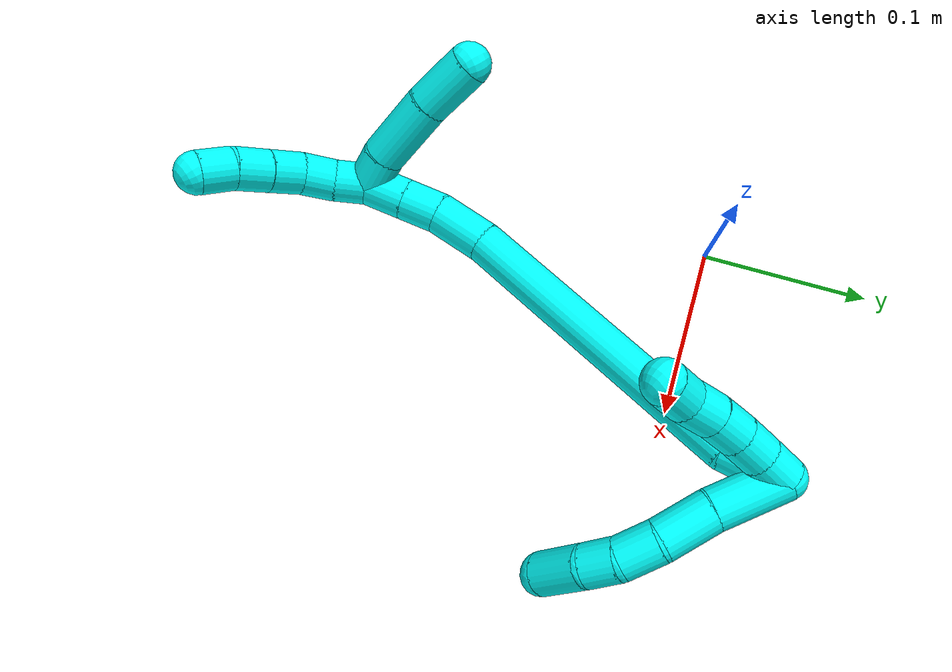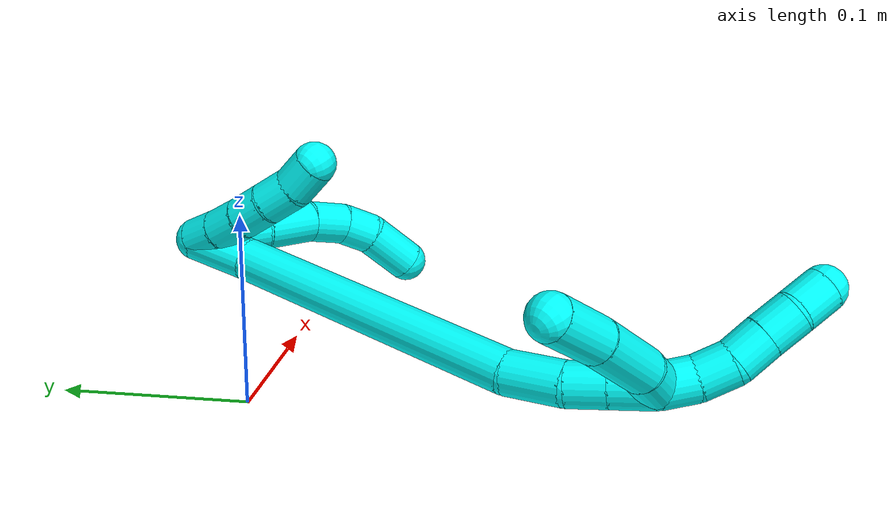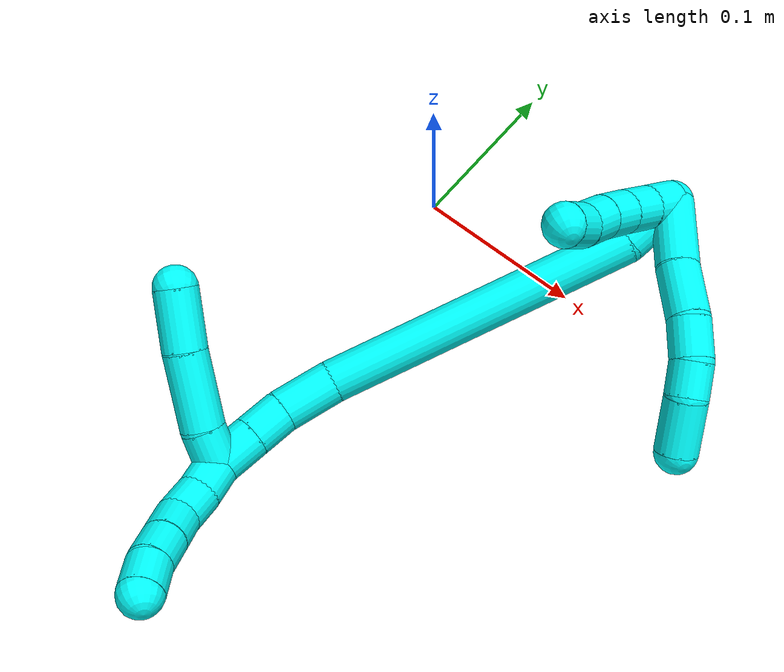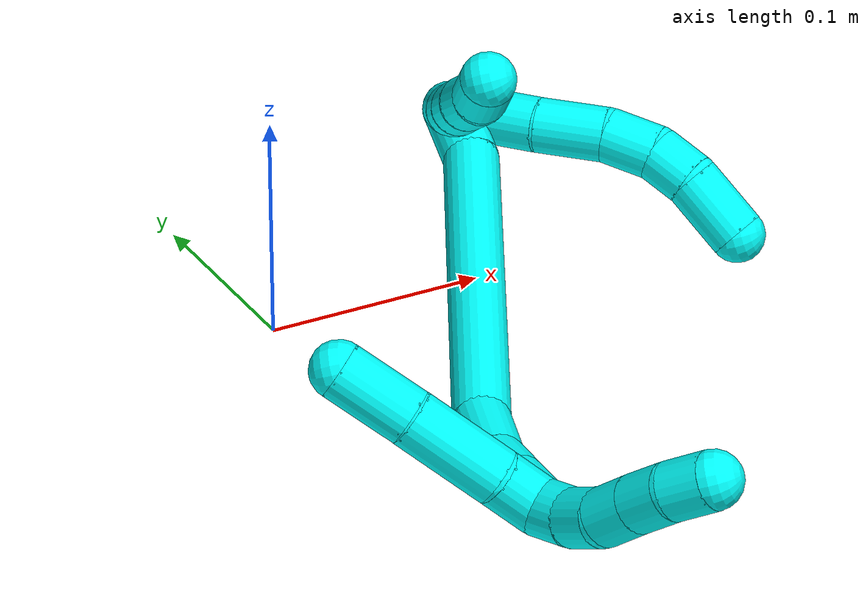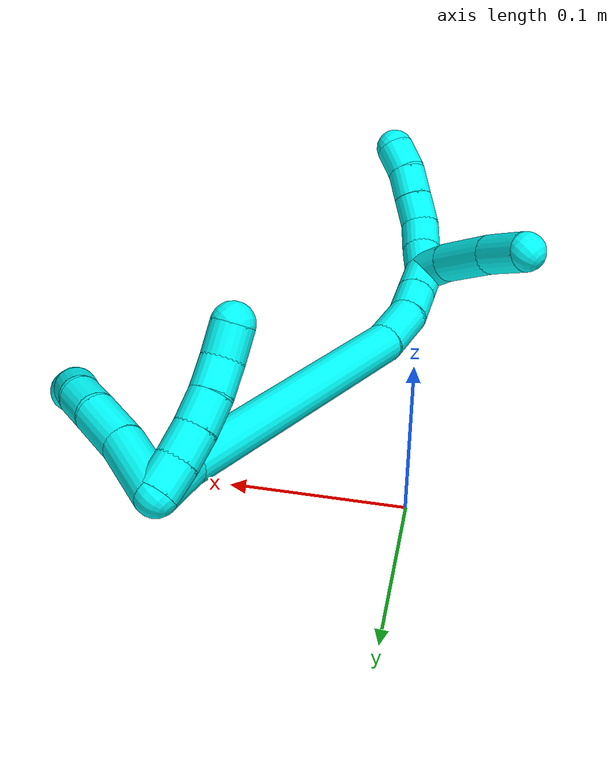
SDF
<sdf version="1.7">
 <world name="default">
  <model name="3">
   <static>0</static>
   <link name="3">
    <collision name="collision-cylinder-e_1_2_8">
     <pose>-0.001048 -0.008668 0.019659 0.415281 -0.048739 -0.01027</pose>
     <geometry><cylinder><radius>0.0125</radius><length>0.04302</length></cylinder></geometry>
     <surface>
      <friction><ode><mu>1.16</mu><mu2>1.16</mu2><slip1>0</slip1><slip2>0</slip2></ode></friction>
      <contact><ode><kp>1e+06</kp><kd>1</kd><max_vel>0</max_vel><min_depth>0.001</min_depth></ode></contact>
     </surface>
    </collision>
    <visual name="visual-cylinder-e_1_2_8">
     <pose>-0.001048 -0.008668 0.019659 0.415281 -0.048739 -0.01027</pose>
     <geometry><cylinder><radius>0.0125</radius><length>0.04302</length></cylinder></geometry>
     <material><ambient>0.003922 1 0.996078 1</ambient></material>
    </visual>
    <collision name="collision-cylinder-e_2_8_9">
     <pose>-0.001193 -0.023029 0.054084 0.367985 0.056977 0.010606</pose>
     <geometry><cylinder><radius>0.0125</radius><length>0.031704</length></cylinder></geometry>
     <surface>
      <friction><ode><mu>1.16</mu><mu2>1.16</mu2><slip1>0</slip1><slip2>0</slip2></ode></friction>
      <contact><ode><kp>1e+06</kp><kd>1</kd><max_vel>0</max_vel><min_depth>0.001</min_depth></ode></contact>
     </surface>
    </collision>
    <visual name="visual-cylinder-e_2_8_9">
     <pose>-0.001193 -0.023029 0.054084 0.367985 0.056977 0.010606</pose>
     <geometry><cylinder><radius>0.0125</radius><length>0.031704</length></cylinder></geometry>
     <material><ambient>0.003922 1 0.996078 1</ambient></material>
    </visual>
    <collision name="collision-cylinder-e_3_9_10">
     <pose>0.00085 -0.03506 0.07867 0.57318 0.097294 0.028693</pose>
     <geometry><cylinder><radius>0.0125</radius><length>0.023484</length></cylinder></geometry>
     <surface>
      <friction><ode><mu>1.16</mu><mu2>1.16</mu2><slip1>0</slip1><slip2>0</slip2></ode></friction>
      <contact><ode><kp>1e+06</kp><kd>1</kd><max_vel>0</max_vel><min_depth>0.001</min_depth></ode></contact>
     </surface>
    </collision>
    <visual name="visual-cylinder-e_3_9_10">
     <pose>0.00085 -0.03506 0.07867 0.57318 0.097294 0.028693</pose>
     <geometry><cylinder><radius>0.0125</radius><length>0.023484</length></cylinder></geometry>
     <material><ambient>0.003922 1 0.996078 1</ambient></material>
    </visual>
    <collision name="collision-cylinder-e_4_10_11">
     <pose>0.002723 -0.049112 0.095037 0.866944 0.072217 0.033435</pose>
     <geometry><cylinder><radius>0.0125</radius><length>0.02029</length></cylinder></geometry>
     <surface>
      <friction><ode><mu>1.16</mu><mu2>1.16</mu2><slip1>0</slip1><slip2>0</slip2></ode></friction>
      <contact><ode><kp>1e+06</kp><kd>1</kd><max_vel>0</max_vel><min_depth>0.001</min_depth></ode></contact>
     </surface>
    </collision>
    <visual name="visual-cylinder-e_4_10_11">
     <pose>0.002723 -0.049112 0.095037 0.866944 0.072217 0.033435</pose>
     <geometry><cylinder><radius>0.0125</radius><length>0.02029</length></cylinder></geometry>
     <material><ambient>0.003922 1 0.996078 1</ambient></material>
    </visual>
    <collision name="collision-cylinder-e_5_11_6">
     <pose>0.007105 -0.070435 0.108623 1.09355 0.233864 0.142756</pose>
     <geometry><cylinder><radius>0.0125</radius><length>0.031501</length></cylinder></geometry>
     <surface>
      <friction><ode><mu>1.16</mu><mu2>1.16</mu2><slip1>0</slip1><slip2>0</slip2></ode></friction>
      <contact><ode><kp>1e+06</kp><kd>1</kd><max_vel>0</max_vel><min_depth>0.001</min_depth></ode></contact>
     </surface>
    </collision>
    <visual name="visual-cylinder-e_5_11_6">
     <pose>0.007105 -0.070435 0.108623 1.09355 0.233864 0.142756</pose>
     <geometry><cylinder><radius>0.0125</radius><length>0.031501</length></cylinder></geometry>
     <material><ambient>0.003922 1 0.996078 1</ambient></material>
    </visual>
    <collision name="collision-cylinder-e_1_2_12">
     <pose>-0.009151 -0.002582 0.003096 0.695146 -1.15586 -0.464059</pose>
     <geometry><cylinder><radius>0.0125</radius><length>0.02</length></cylinder></geometry>
     <surface>
      <friction><ode><mu>1.16</mu><mu2>1.16</mu2><slip1>0</slip1><slip2>0</slip2></ode></friction>
      <contact><ode><kp>1e+06</kp><kd>1</kd><max_vel>0</max_vel><min_depth>0.001</min_depth></ode></contact>
     </surface>
    </collision>
    <visual name="visual-cylinder-e_1_2_12">
     <pose>-0.009151 -0.002582 0.003096 0.695146 -1.15586 -0.464059</pose>
     <geometry><cylinder><radius>0.0125</radius><length>0.02</length></cylinder></geometry>
     <material><ambient>0.003922 1 0.996078 1</ambient></material>
    </visual>
    <collision name="collision-cylinder-e_2_12_13">
     <pose>-0.027459 -0.007061 0.009738 0.491334 -1.15691 -0.324559</pose>
     <geometry><cylinder><radius>0.0125</radius><length>0.02</length></cylinder></geometry>
     <surface>
      <friction><ode><mu>1.16</mu><mu2>1.16</mu2><slip1>0</slip1><slip2>0</slip2></ode></friction>
      <contact><ode><kp>1e+06</kp><kd>1</kd><max_vel>0</max_vel><min_depth>0.001</min_depth></ode></contact>
     </surface>
    </collision>
    <visual name="visual-cylinder-e_2_12_13">
     <pose>-0.027459 -0.007061 0.009738 0.491334 -1.15691 -0.324559</pose>
     <geometry><cylinder><radius>0.0125</radius><length>0.02</length></cylinder></geometry>
     <material><ambient>0.003922 1 0.996078 1</ambient></material>
    </visual>
    <collision name="collision-cylinder-e_3_13_14">
     <pose>-0.04557 -0.010419 0.017487 0.334228 -1.10967 -0.20834</pose>
     <geometry><cylinder><radius>0.0125</radius><length>0.02</length></cylinder></geometry>
     <surface>
      <friction><ode><mu>1.16</mu><mu2>1.16</mu2><slip1>0</slip1><slip2>0</slip2></ode></friction>
      <contact><ode><kp>1e+06</kp><kd>1</kd><max_vel>0</max_vel><min_depth>0.001</min_depth></ode></contact>
     </surface>
    </collision>
    <visual name="visual-cylinder-e_3_13_14">
     <pose>-0.04557 -0.010419 0.017487 0.334228 -1.10967 -0.20834</pose>
     <geometry><cylinder><radius>0.0125</radius><length>0.02</length></cylinder></geometry>
     <material><ambient>0.003922 1 0.996078 1</ambient></material>
    </visual>
    <collision name="collision-cylinder-e_4_14_15">
     <pose>-0.062954 -0.013272 0.026888 0.261998 -1.00258 -0.144146</pose>
     <geometry><cylinder><radius>0.0125</radius><length>0.02</length></cylinder></geometry>
     <surface>
      <friction><ode><mu>1.16</mu><mu2>1.16</mu2><slip1>0</slip1><slip2>0</slip2></ode></friction>
      <contact><ode><kp>1e+06</kp><kd>1</kd><max_vel>0</max_vel><min_depth>0.001</min_depth></ode></contact>
     </surface>
    </collision>
    <visual name="visual-cylinder-e_4_14_15">
     <pose>-0.062954 -0.013272 0.026888 0.261998 -1.00258 -0.144146</pose>
     <geometry><cylinder><radius>0.0125</radius><length>0.02</length></cylinder></geometry>
     <material><ambient>0.003922 1 0.996078 1</ambient></material>
    </visual>
    <collision name="collision-cylinder-e_5_15_5">
     <pose>-0.080145 -0.013453 0.036749 -0.254402 -1.06803 0.150963</pose>
     <geometry><cylinder><radius>0.0125</radius><length>0.02</length></cylinder></geometry>
     <surface>
      <friction><ode><mu>1.16</mu><mu2>1.16</mu2><slip1>0</slip1><slip2>0</slip2></ode></friction>
      <contact><ode><kp>1e+06</kp><kd>1</kd><max_vel>0</max_vel><min_depth>0.001</min_depth></ode></contact>
     </surface>
    </collision>
    <visual name="visual-cylinder-e_5_15_5">
     <pose>-0.080145 -0.013453 0.036749 -0.254402 -1.06803 0.150963</pose>
     <geometry><cylinder><radius>0.0125</radius><length>0.02</length></cylinder></geometry>
     <material><ambient>0.003922 1 0.996078 1</ambient></material>
    </visual>
    <collision name="collision-cylinder-e_1_2_16">
     <pose>-0.008757 -0.014402 0.004855 1.24565 -0.522707 -0.379561</pose>
     <geometry><cylinder><radius>0.0125</radius><length>0.035081</length></cylinder></geometry>
     <surface>
      <friction><ode><mu>1.16</mu><mu2>1.16</mu2><slip1>0</slip1><slip2>0</slip2></ode></friction>
      <contact><ode><kp>1e+06</kp><kd>1</kd><max_vel>0</max_vel><min_depth>0.001</min_depth></ode></contact>
     </surface>
    </collision>
    <visual name="visual-cylinder-e_1_2_16">
     <pose>-0.008757 -0.014402 0.004855 1.24565 -0.522707 -0.379561</pose>
     <geometry><cylinder><radius>0.0125</radius><length>0.035081</length></cylinder></geometry>
     <material><ambient>0.003922 1 0.996078 1</ambient></material>
    </visual>
    <collision name="collision-cylinder-e_2_16_17">
     <pose>-0.079715 -0.097113 0.017155 1.46224 -0.735698 -0.665627</pose>
     <geometry><cylinder><radius>0.0125</radius><length>0.185371</length></cylinder></geometry>
     <surface>
      <friction><ode><mu>1.16</mu><mu2>1.16</mu2><slip1>0</slip1><slip2>0</slip2></ode></friction>
      <contact><ode><kp>1e+06</kp><kd>1</kd><max_vel>0</max_vel><min_depth>0.001</min_depth></ode></contact>
     </surface>
    </collision>
    <visual name="visual-cylinder-e_2_16_17">
     <pose>-0.079715 -0.097113 0.017155 1.46224 -0.735698 -0.665627</pose>
     <geometry><cylinder><radius>0.0125</radius><length>0.185371</length></cylinder></geometry>
     <material><ambient>0.003922 1 0.996078 1</ambient></material>
    </visual>
    <collision name="collision-cylinder-e_3_17_18">
     <pose>-0.153567 -0.176287 0.0291 1.17807 -0.780717 -0.536602</pose>
     <geometry><cylinder><radius>0.0125</radius><length>0.033107</length></cylinder></geometry>
     <surface>
      <friction><ode><mu>1.16</mu><mu2>1.16</mu2><slip1>0</slip1><slip2>0</slip2></ode></friction>
      <contact><ode><kp>1e+06</kp><kd>1</kd><max_vel>0</max_vel><min_depth>0.001</min_depth></ode></contact>
     </surface>
    </collision>
    <visual name="visual-cylinder-e_3_17_18">
     <pose>-0.153567 -0.176287 0.0291 1.17807 -0.780717 -0.536602</pose>
     <geometry><cylinder><radius>0.0125</radius><length>0.033107</length></cylinder></geometry>
     <material><ambient>0.003922 1 0.996078 1</ambient></material>
    </visual>
    <collision name="collision-cylinder-e_4_18_19">
     <pose>-0.172572 -0.193651 0.038993 0.878263 -0.716479 -0.348161</pose>
     <geometry><cylinder><radius>0.0125</radius><length>0.022398</length></cylinder></geometry>
     <surface>
      <friction><ode><mu>1.16</mu><mu2>1.16</mu2><slip1>0</slip1><slip2>0</slip2></ode></friction>
      <contact><ode><kp>1e+06</kp><kd>1</kd><max_vel>0</max_vel><min_depth>0.001</min_depth></ode></contact>
     </surface>
    </collision>
    <visual name="visual-cylinder-e_4_18_19">
     <pose>-0.172572 -0.193651 0.038993 0.878263 -0.716479 -0.348161</pose>
     <geometry><cylinder><radius>0.0125</radius><length>0.022398</length></cylinder></geometry>
     <material><ambient>0.003922 1 0.996078 1</ambient></material>
    </visual>
    <collision name="collision-cylinder-e_5_19_1">
     <pose>-0.187823 -0.207128 0.050172 0.878348 -0.716592 -0.348258</pose>
     <geometry><cylinder><radius>0.0125</radius><length>0.024043</length></cylinder></geometry>
     <surface>
      <friction><ode><mu>1.16</mu><mu2>1.16</mu2><slip1>0</slip1><slip2>0</slip2></ode></friction>
      <contact><ode><kp>1e+06</kp><kd>1</kd><max_vel>0</max_vel><min_depth>0.001</min_depth></ode></contact>
     </surface>
    </collision>
    <visual name="visual-cylinder-e_5_19_1">
     <pose>-0.187823 -0.207128 0.050172 0.878348 -0.716592 -0.348258</pose>
     <geometry><cylinder><radius>0.0125</radius><length>0.024043</length></cylinder></geometry>
     <material><ambient>0.003922 1 0.996078 1</ambient></material>
    </visual>
    <collision name="collision-cylinder-e_1_1_20">
     <pose>-0.202397 -0.207339 0.050059 -2.2879 -0.639602 1.25874</pose>
     <geometry><cylinder><radius>0.0125</radius><length>0.022378</length></cylinder></geometry>
     <surface>
      <friction><ode><mu>1.16</mu><mu2>1.16</mu2><slip1>0</slip1><slip2>0</slip2></ode></friction>
      <contact><ode><kp>1e+06</kp><kd>1</kd><max_vel>0</max_vel><min_depth>0.001</min_depth></ode></contact>
     </surface>
    </collision>
    <visual name="visual-cylinder-e_1_1_20">
     <pose>-0.202397 -0.207339 0.050059 -2.2879 -0.639602 1.25874</pose>
     <geometry><cylinder><radius>0.0125</radius><length>0.022378</length></cylinder></geometry>
     <material><ambient>0.003922 1 0.996078 1</ambient></material>
    </visual>
    <collision name="collision-cylinder-e_2_20_21">
     <pose>-0.218736 -0.186356 0.031106 -2.31358 -0.464065 0.986772</pose>
     <geometry><cylinder><radius>0.0125</radius><length>0.043166</length></cylinder></geometry>
     <surface>
      <friction><ode><mu>1.16</mu><mu2>1.16</mu2><slip1>0</slip1><slip2>0</slip2></ode></friction>
      <contact><ode><kp>1e+06</kp><kd>1</kd><max_vel>0</max_vel><min_depth>0.001</min_depth></ode></contact>
     </surface>
    </collision>
    <visual name="visual-cylinder-e_2_20_21">
     <pose>-0.218736 -0.186356 0.031106 -2.31358 -0.464065 0.986772</pose>
     <geometry><cylinder><radius>0.0125</radius><length>0.043166</length></cylinder></geometry>
     <material><ambient>0.003922 1 0.996078 1</ambient></material>
    </visual>
    <collision name="collision-cylinder-e_3_21_4">
     <pose>-0.234698 -0.160566 0.006955 -2.3352 -0.374454 0.835907</pose>
     <geometry><cylinder><radius>0.0125</radius><length>0.034456</length></cylinder></geometry>
     <surface>
      <friction><ode><mu>1.16</mu><mu2>1.16</mu2><slip1>0</slip1><slip2>0</slip2></ode></friction>
      <contact><ode><kp>1e+06</kp><kd>1</kd><max_vel>0</max_vel><min_depth>0.001</min_depth></ode></contact>
     </surface>
    </collision>
    <visual name="visual-cylinder-e_3_21_4">
     <pose>-0.234698 -0.160566 0.006955 -2.3352 -0.374454 0.835907</pose>
     <geometry><cylinder><radius>0.0125</radius><length>0.034456</length></cylinder></geometry>
     <material><ambient>0.003922 1 0.996078 1</ambient></material>
    </visual>
    <collision name="collision-cylinder-e_1_1_22">
     <pose>-0.200657 -0.218516 0.063453 0.532069 -0.516521 -0.143716</pose>
     <geometry><cylinder><radius>0.0125</radius><length>0.02</length></cylinder></geometry>
     <surface>
      <friction><ode><mu>1.16</mu><mu2>1.16</mu2><slip1>0</slip1><slip2>0</slip2></ode></friction>
      <contact><ode><kp>1e+06</kp><kd>1</kd><max_vel>0</max_vel><min_depth>0.001</min_depth></ode></contact>
     </surface>
    </collision>
    <visual name="visual-cylinder-e_1_1_22">
     <pose>-0.200657 -0.218516 0.063453 0.532069 -0.516521 -0.143716</pose>
     <geometry><cylinder><radius>0.0125</radius><length>0.02</length></cylinder></geometry>
     <material><ambient>0.003922 1 0.996078 1</ambient></material>
    </visual>
    <collision name="collision-cylinder-e_2_22_23">
     <pose>-0.211781 -0.225127 0.07849 0.283731 -0.666861 -0.098858</pose>
     <geometry><cylinder><radius>0.0125</radius><length>0.02</length></cylinder></geometry>
     <surface>
      <friction><ode><mu>1.16</mu><mu2>1.16</mu2><slip1>0</slip1><slip2>0</slip2></ode></friction>
      <contact><ode><kp>1e+06</kp><kd>1</kd><max_vel>0</max_vel><min_depth>0.001</min_depth></ode></contact>
     </surface>
    </collision>
    <visual name="visual-cylinder-e_2_22_23">
     <pose>-0.211781 -0.225127 0.07849 0.283731 -0.666861 -0.098858</pose>
     <geometry><cylinder><radius>0.0125</radius><length>0.02</length></cylinder></geometry>
     <material><ambient>0.003922 1 0.996078 1</ambient></material>
    </visual>
    <collision name="collision-cylinder-e_3_23_24">
     <pose>-0.223135 -0.226836 0.094579 -0.057411 -0.543246 0.015993</pose>
     <geometry><cylinder><radius>0.0125</radius><length>0.02</length></cylinder></geometry>
     <surface>
      <friction><ode><mu>1.16</mu><mu2>1.16</mu2><slip1>0</slip1><slip2>0</slip2></ode></friction>
      <contact><ode><kp>1e+06</kp><kd>1</kd><max_vel>0</max_vel><min_depth>0.001</min_depth></ode></contact>
     </surface>
    </collision>
    <visual name="visual-cylinder-e_3_23_24">
     <pose>-0.223135 -0.226836 0.094579 -0.057411 -0.543246 0.015993</pose>
     <geometry><cylinder><radius>0.0125</radius><length>0.02</length></cylinder></geometry>
     <material><ambient>0.003922 1 0.996078 1</ambient></material>
    </visual>
    <collision name="collision-cylinder-e_4_24_25">
     <pose>-0.233508 -0.226192 0.111663 -0.017929 -0.547319 0.005033</pose>
     <geometry><cylinder><radius>0.0125</radius><length>0.02</length></cylinder></geometry>
     <surface>
      <friction><ode><mu>1.16</mu><mu2>1.16</mu2><slip1>0</slip1><slip2>0</slip2></ode></friction>
      <contact><ode><kp>1e+06</kp><kd>1</kd><max_vel>0</max_vel><min_depth>0.001</min_depth></ode></contact>
     </surface>
    </collision>
    <visual name="visual-cylinder-e_4_24_25">
     <pose>-0.233508 -0.226192 0.111663 -0.017929 -0.547319 0.005033</pose>
     <geometry><cylinder><radius>0.0125</radius><length>0.02</length></cylinder></geometry>
     <material><ambient>0.003922 1 0.996078 1</ambient></material>
    </visual>
    <collision name="collision-cylinder-e_5_25_3">
     <pose>-0.24212 -0.226176 0.129602 0.01465 -0.347703 -0.002573</pose>
     <geometry><cylinder><radius>0.0125</radius><length>0.02</length></cylinder></geometry>
     <surface>
      <friction><ode><mu>1.16</mu><mu2>1.16</mu2><slip1>0</slip1><slip2>0</slip2></ode></friction>
      <contact><ode><kp>1e+06</kp><kd>1</kd><max_vel>0</max_vel><min_depth>0.001</min_depth></ode></contact>
     </surface>
    </collision>
    <visual name="visual-cylinder-e_5_25_3">
     <pose>-0.24212 -0.226176 0.129602 0.01465 -0.347703 -0.002573</pose>
     <geometry><cylinder><radius>0.0125</radius><length>0.02</length></cylinder></geometry>
     <material><ambient>0.003922 1 0.996078 1</ambient></material>
    </visual>
    <collision name="collision-sphere-3">
     <pose>-0.245527 -0.226314 0.139002 0 -0 0</pose>
     <geometry><sphere><radius>0.0125</radius></sphere></geometry>
     <surface>
      <friction><ode><mu>1.16</mu><mu2>1.16</mu2><slip1>0</slip1><slip2>0</slip2></ode></friction>
      <contact><ode><kp>1e+06</kp><kd>1</kd><max_vel>0</max_vel><min_depth>0.001</min_depth></ode></contact>
     </surface>
    </collision>
    <visual name="visual-sphere-3">
     <pose>-0.245527 -0.226314 0.139002 0 -0 0</pose>
     <geometry><sphere><radius>0.0125</radius></sphere></geometry>
     <material><ambient>0.003922 1 0.996078 1</ambient></material>
    </visual>
    <collision name="collision-sphere-25">
     <pose>-0.238712 -0.226038 0.120201 0 -0 0</pose>
     <geometry><sphere><radius>0.0125</radius></sphere></geometry>
     <surface>
      <friction><ode><mu>1.16</mu><mu2>1.16</mu2><slip1>0</slip1><slip2>0</slip2></ode></friction>
      <contact><ode><kp>1e+06</kp><kd>1</kd><max_vel>0</max_vel><min_depth>0.001</min_depth></ode></contact>
     </surface>
    </collision>
    <visual name="visual-sphere-25">
     <pose>-0.238712 -0.226038 0.120201 0 -0 0</pose>
     <geometry><sphere><radius>0.0125</radius></sphere></geometry>
     <material><ambient>0.003922 1 0.996078 1</ambient></material>
    </visual>
    <collision name="collision-sphere-24">
     <pose>-0.228304 -0.226345 0.103126 0 -0 0</pose>
     <geometry><sphere><radius>0.0125</radius></sphere></geometry>
     <surface>
      <friction><ode><mu>1.16</mu><mu2>1.16</mu2><slip1>0</slip1><slip2>0</slip2></ode></friction>
      <contact><ode><kp>1e+06</kp><kd>1</kd><max_vel>0</max_vel><min_depth>0.001</min_depth></ode></contact>
     </surface>
    </collision>
    <visual name="visual-sphere-24">
     <pose>-0.228304 -0.226345 0.103126 0 -0 0</pose>
     <geometry><sphere><radius>0.0125</radius></sphere></geometry>
     <material><ambient>0.003922 1 0.996078 1</ambient></material>
    </visual>
    <collision name="collision-sphere-23">
     <pose>-0.217966 -0.227327 0.086033 0 -0 0</pose>
     <geometry><sphere><radius>0.0125</radius></sphere></geometry>
     <surface>
      <friction><ode><mu>1.16</mu><mu2>1.16</mu2><slip1>0</slip1><slip2>0</slip2></ode></friction>
      <contact><ode><kp>1e+06</kp><kd>1</kd><max_vel>0</max_vel><min_depth>0.001</min_depth></ode></contact>
     </surface>
    </collision>
    <visual name="visual-sphere-23">
     <pose>-0.217966 -0.227327 0.086033 0 -0 0</pose>
     <geometry><sphere><radius>0.0125</radius></sphere></geometry>
     <material><ambient>0.003922 1 0.996078 1</ambient></material>
    </visual>
    <collision name="collision-sphere-22">
     <pose>-0.205596 -0.222928 0.070946 0 -0 0</pose>
     <geometry><sphere><radius>0.0125</radius></sphere></geometry>
     <surface>
      <friction><ode><mu>1.16</mu><mu2>1.16</mu2><slip1>0</slip1><slip2>0</slip2></ode></friction>
      <contact><ode><kp>1e+06</kp><kd>1</kd><max_vel>0</max_vel><min_depth>0.001</min_depth></ode></contact>
     </surface>
    </collision>
    <visual name="visual-sphere-22">
     <pose>-0.205596 -0.222928 0.070946 0 -0 0</pose>
     <geometry><sphere><radius>0.0125</radius></sphere></geometry>
     <material><ambient>0.003922 1 0.996078 1</ambient></material>
    </visual>
    <collision name="collision-sphere-4">
     <pose>-0.240999 -0.148993 -0.004142 0 -0 0</pose>
     <geometry><sphere><radius>0.0125</radius></sphere></geometry>
     <surface>
      <friction><ode><mu>1.16</mu><mu2>1.16</mu2><slip1>0</slip1><slip2>0</slip2></ode></friction>
      <contact><ode><kp>1e+06</kp><kd>1</kd><max_vel>0</max_vel><min_depth>0.001</min_depth></ode></contact>
     </surface>
    </collision>
    <visual name="visual-sphere-4">
     <pose>-0.240999 -0.148993 -0.004142 0 -0 0</pose>
     <geometry><sphere><radius>0.0125</radius></sphere></geometry>
     <material><ambient>0.003922 1 0.996078 1</ambient></material>
    </visual>
    <collision name="collision-sphere-21">
     <pose>-0.228396 -0.172139 0.018052 0 -0 0</pose>
     <geometry><sphere><radius>0.0125</radius></sphere></geometry>
     <surface>
      <friction><ode><mu>1.16</mu><mu2>1.16</mu2><slip1>0</slip1><slip2>0</slip2></ode></friction>
      <contact><ode><kp>1e+06</kp><kd>1</kd><max_vel>0</max_vel><min_depth>0.001</min_depth></ode></contact>
     </surface>
    </collision>
    <visual name="visual-sphere-21">
     <pose>-0.228396 -0.172139 0.018052 0 -0 0</pose>
     <geometry><sphere><radius>0.0125</radius></sphere></geometry>
     <material><ambient>0.003922 1 0.996078 1</ambient></material>
    </visual>
    <collision name="collision-sphere-20">
     <pose>-0.209076 -0.200572 0.044159 0 -0 0</pose>
     <geometry><sphere><radius>0.0125</radius></sphere></geometry>
     <surface>
      <friction><ode><mu>1.16</mu><mu2>1.16</mu2><slip1>0</slip1><slip2>0</slip2></ode></friction>
      <contact><ode><kp>1e+06</kp><kd>1</kd><max_vel>0</max_vel><min_depth>0.001</min_depth></ode></contact>
     </surface>
    </collision>
    <visual name="visual-sphere-20">
     <pose>-0.209076 -0.200572 0.044159 0 -0 0</pose>
     <geometry><sphere><radius>0.0125</radius></sphere></geometry>
     <material><ambient>0.003922 1 0.996078 1</ambient></material>
    </visual>
    <collision name="collision-sphere-6">
     <pose>0.010755 -0.084045 0.115661 0 -0 0</pose>
     <geometry><sphere><radius>0.0125</radius></sphere></geometry>
     <surface>
      <friction><ode><mu>1.16</mu><mu2>1.16</mu2><slip1>0</slip1><slip2>0</slip2></ode></friction>
      <contact><ode><kp>1e+06</kp><kd>1</kd><max_vel>0</max_vel><min_depth>0.001</min_depth></ode></contact>
     </surface>
    </collision>
    <visual name="visual-sphere-6">
     <pose>0.010755 -0.084045 0.115661 0 -0 0</pose>
     <geometry><sphere><radius>0.0125</radius></sphere></geometry>
     <material><ambient>0.003922 1 0.996078 1</ambient></material>
    </visual>
    <collision name="collision-sphere-11">
     <pose>0.003455 -0.056826 0.101585 0 -0 0</pose>
     <geometry><sphere><radius>0.0125</radius></sphere></geometry>
     <surface>
      <friction><ode><mu>1.16</mu><mu2>1.16</mu2><slip1>0</slip1><slip2>0</slip2></ode></friction>
      <contact><ode><kp>1e+06</kp><kd>1</kd><max_vel>0</max_vel><min_depth>0.001</min_depth></ode></contact>
     </surface>
    </collision>
    <visual name="visual-sphere-11">
     <pose>0.003455 -0.056826 0.101585 0 -0 0</pose>
     <geometry><sphere><radius>0.0125</radius></sphere></geometry>
     <material><ambient>0.003922 1 0.996078 1</ambient></material>
    </visual>
    <collision name="collision-sphere-10">
     <pose>0.001991 -0.041398 0.088488 0 -0 0</pose>
     <geometry><sphere><radius>0.0125</radius></sphere></geometry>
     <surface>
      <friction><ode><mu>1.16</mu><mu2>1.16</mu2><slip1>0</slip1><slip2>0</slip2></ode></friction>
      <contact><ode><kp>1e+06</kp><kd>1</kd><max_vel>0</max_vel><min_depth>0.001</min_depth></ode></contact>
     </surface>
    </collision>
    <visual name="visual-sphere-10">
     <pose>0.001991 -0.041398 0.088488 0 -0 0</pose>
     <geometry><sphere><radius>0.0125</radius></sphere></geometry>
     <material><ambient>0.003922 1 0.996078 1</ambient></material>
    </visual>
    <collision name="collision-sphere-9">
     <pose>-0.00029 -0.028723 0.068851 0 -0 0</pose>
     <geometry><sphere><radius>0.0125</radius></sphere></geometry>
     <surface>
      <friction><ode><mu>1.16</mu><mu2>1.16</mu2><slip1>0</slip1><slip2>0</slip2></ode></friction>
      <contact><ode><kp>1e+06</kp><kd>1</kd><max_vel>0</max_vel><min_depth>0.001</min_depth></ode></contact>
     </surface>
    </collision>
    <visual name="visual-sphere-9">
     <pose>-0.00029 -0.028723 0.068851 0 -0 0</pose>
     <geometry><sphere><radius>0.0125</radius></sphere></geometry>
     <material><ambient>0.003922 1 0.996078 1</ambient></material>
    </visual>
    <collision name="collision-sphere-2">
     <geometry><sphere><radius>0.0125</radius></sphere></geometry>
     <surface>
      <friction><ode><mu>1.16</mu><mu2>1.16</mu2><slip1>0</slip1><slip2>0</slip2></ode></friction>
      <contact><ode><kp>1e+06</kp><kd>1</kd><max_vel>0</max_vel><min_depth>0.001</min_depth></ode></contact>
     </surface>
    </collision>
    <visual name="visual-sphere-2">
     <geometry><sphere><radius>0.0125</radius></sphere></geometry>
     <material><ambient>0.003922 1 0.996078 1</ambient></material>
    </visual>
    <collision name="collision-sphere-19">
     <pose>-0.179927 -0.200151 0.044385 0 -0 0</pose>
     <geometry><sphere><radius>0.0125</radius></sphere></geometry>
     <surface>
      <friction><ode><mu>1.16</mu><mu2>1.16</mu2><slip1>0</slip1><slip2>0</slip2></ode></friction>
      <contact><ode><kp>1e+06</kp><kd>1</kd><max_vel>0</max_vel><min_depth>0.001</min_depth></ode></contact>
     </surface>
    </collision>
    <visual name="visual-sphere-19">
     <pose>-0.179927 -0.200151 0.044385 0 -0 0</pose>
     <geometry><sphere><radius>0.0125</radius></sphere></geometry>
     <material><ambient>0.003922 1 0.996078 1</ambient></material>
    </visual>
    <collision name="collision-sphere-8">
     <pose>-0.002096 -0.017336 0.039317 0 -0 0</pose>
     <geometry><sphere><radius>0.0125</radius></sphere></geometry>
     <surface>
      <friction><ode><mu>1.16</mu><mu2>1.16</mu2><slip1>0</slip1><slip2>0</slip2></ode></friction>
      <contact><ode><kp>1e+06</kp><kd>1</kd><max_vel>0</max_vel><min_depth>0.001</min_depth></ode></contact>
     </surface>
    </collision>
    <visual name="visual-sphere-8">
     <pose>-0.002096 -0.017336 0.039317 0 -0 0</pose>
     <geometry><sphere><radius>0.0125</radius></sphere></geometry>
     <material><ambient>0.003922 1 0.996078 1</ambient></material>
    </visual>
    <collision name="collision-sphere-12">
     <pose>-0.018303 -0.005164 0.006192 0 -0 0</pose>
     <geometry><sphere><radius>0.0125</radius></sphere></geometry>
     <surface>
      <friction><ode><mu>1.16</mu><mu2>1.16</mu2><slip1>0</slip1><slip2>0</slip2></ode></friction>
      <contact><ode><kp>1e+06</kp><kd>1</kd><max_vel>0</max_vel><min_depth>0.001</min_depth></ode></contact>
     </surface>
    </collision>
    <visual name="visual-sphere-12">
     <pose>-0.018303 -0.005164 0.006192 0 -0 0</pose>
     <geometry><sphere><radius>0.0125</radius></sphere></geometry>
     <material><ambient>0.003922 1 0.996078 1</ambient></material>
    </visual>
    <collision name="collision-sphere-13">
     <pose>-0.036614 -0.008959 0.013284 0 -0 0</pose>
     <geometry><sphere><radius>0.0125</radius></sphere></geometry>
     <surface>
      <friction><ode><mu>1.16</mu><mu2>1.16</mu2><slip1>0</slip1><slip2>0</slip2></ode></friction>
      <contact><ode><kp>1e+06</kp><kd>1</kd><max_vel>0</max_vel><min_depth>0.001</min_depth></ode></contact>
     </surface>
    </collision>
    <visual name="visual-sphere-13">
     <pose>-0.036614 -0.008959 0.013284 0 -0 0</pose>
     <geometry><sphere><radius>0.0125</radius></sphere></geometry>
     <material><ambient>0.003922 1 0.996078 1</ambient></material>
    </visual>
    <collision name="collision-sphere-14">
     <pose>-0.054525 -0.011878 0.02169 0 -0 0</pose>
     <geometry><sphere><radius>0.0125</radius></sphere></geometry>
     <surface>
      <friction><ode><mu>1.16</mu><mu2>1.16</mu2><slip1>0</slip1><slip2>0</slip2></ode></friction>
      <contact><ode><kp>1e+06</kp><kd>1</kd><max_vel>0</max_vel><min_depth>0.001</min_depth></ode></contact>
     </surface>
    </collision>
    <visual name="visual-sphere-14">
     <pose>-0.054525 -0.011878 0.02169 0 -0 0</pose>
     <geometry><sphere><radius>0.0125</radius></sphere></geometry>
     <material><ambient>0.003922 1 0.996078 1</ambient></material>
    </visual>
    <collision name="collision-sphere-15">
     <pose>-0.071382 -0.014666 0.032086 0 -0 0</pose>
     <geometry><sphere><radius>0.0125</radius></sphere></geometry>
     <surface>
      <friction><ode><mu>1.16</mu><mu2>1.16</mu2><slip1>0</slip1><slip2>0</slip2></ode></friction>
      <contact><ode><kp>1e+06</kp><kd>1</kd><max_vel>0</max_vel><min_depth>0.001</min_depth></ode></contact>
     </surface>
    </collision>
    <visual name="visual-sphere-15">
     <pose>-0.071382 -0.014666 0.032086 0 -0 0</pose>
     <geometry><sphere><radius>0.0125</radius></sphere></geometry>
     <material><ambient>0.003922 1 0.996078 1</ambient></material>
    </visual>
    <collision name="collision-sphere-5">
     <pose>-0.088908 -0.012241 0.041412 0 -0 0</pose>
     <geometry><sphere><radius>0.0125</radius></sphere></geometry>
     <surface>
      <friction><ode><mu>1.16</mu><mu2>1.16</mu2><slip1>0</slip1><slip2>0</slip2></ode></friction>
      <contact><ode><kp>1e+06</kp><kd>1</kd><max_vel>0</max_vel><min_depth>0.001</min_depth></ode></contact>
     </surface>
    </collision>
    <visual name="visual-sphere-5">
     <pose>-0.088908 -0.012241 0.041412 0 -0 0</pose>
     <geometry><sphere><radius>0.0125</radius></sphere></geometry>
     <material><ambient>0.003922 1 0.996078 1</ambient></material>
    </visual>
    <collision name="collision-sphere-16">
     <pose>-0.017514 -0.028804 0.00971 0 -0 0</pose>
     <geometry><sphere><radius>0.0125</radius></sphere></geometry>
     <surface>
      <friction><ode><mu>1.16</mu><mu2>1.16</mu2><slip1>0</slip1><slip2>0</slip2></ode></friction>
      <contact><ode><kp>1e+06</kp><kd>1</kd><max_vel>0</max_vel><min_depth>0.001</min_depth></ode></contact>
     </surface>
    </collision>
    <visual name="visual-sphere-16">
     <pose>-0.017514 -0.028804 0.00971 0 -0 0</pose>
     <geometry><sphere><radius>0.0125</radius></sphere></geometry>
     <material><ambient>0.003922 1 0.996078 1</ambient></material>
    </visual>
    <collision name="collision-sphere-17">
     <pose>-0.141917 -0.165422 0.024599 0 -0 0</pose>
     <geometry><sphere><radius>0.0125</radius></sphere></geometry>
     <surface>
      <friction><ode><mu>1.16</mu><mu2>1.16</mu2><slip1>0</slip1><slip2>0</slip2></ode></friction>
      <contact><ode><kp>1e+06</kp><kd>1</kd><max_vel>0</max_vel><min_depth>0.001</min_depth></ode></contact>
     </surface>
    </collision>
    <visual name="visual-sphere-17">
     <pose>-0.141917 -0.165422 0.024599 0 -0 0</pose>
     <geometry><sphere><radius>0.0125</radius></sphere></geometry>
     <material><ambient>0.003922 1 0.996078 1</ambient></material>
    </visual>
    <collision name="collision-sphere-18">
     <pose>-0.165217 -0.187151 0.033601 0 -0 0</pose>
     <geometry><sphere><radius>0.0125</radius></sphere></geometry>
     <surface>
      <friction><ode><mu>1.16</mu><mu2>1.16</mu2><slip1>0</slip1><slip2>0</slip2></ode></friction>
      <contact><ode><kp>1e+06</kp><kd>1</kd><max_vel>0</max_vel><min_depth>0.001</min_depth></ode></contact>
     </surface>
    </collision>
    <visual name="visual-sphere-18">
     <pose>-0.165217 -0.187151 0.033601 0 -0 0</pose>
     <geometry><sphere><radius>0.0125</radius></sphere></geometry>
     <material><ambient>0.003922 1 0.996078 1</ambient></material>
    </visual>
    <collision name="collision-sphere-1">
     <pose>-0.195718 -0.214105 0.055959 0 -0 0</pose>
     <geometry><sphere><radius>0.0125</radius></sphere></geometry>
     <surface>
      <friction><ode><mu>1.16</mu><mu2>1.16</mu2><slip1>0</slip1><slip2>0</slip2></ode></friction>
      <contact><ode><kp>1e+06</kp><kd>1</kd><max_vel>0</max_vel><min_depth>0.001</min_depth></ode></contact>
     </surface>
    </collision>
    <visual name="visual-sphere-1">
     <pose>-0.195718 -0.214105 0.055959 0 -0 0</pose>
     <geometry><sphere><radius>0.0125</radius></sphere></geometry>
     <material><ambient>0.003922 1 0.996078 1</ambient></material>
    </visual>
    <inertial>
     <pose>-0.102828 -0.107216 0.040385 0 -0 0</pose>
     <mass>0.75</mass>
     <inertia><ixx>9.1e-05</ixx><ixy>0</ixy><ixz>0</ixz><iyy>4.4e-05</iyy><iyz>0</iyz><izz>0.000811</izz></inertia>
    </inertial>
   </link>
   <pose>0.122291 0.06533 0.049414 1.18007 0.609117 0.729571</pose>
  </model>
 </world>
</sdf>
